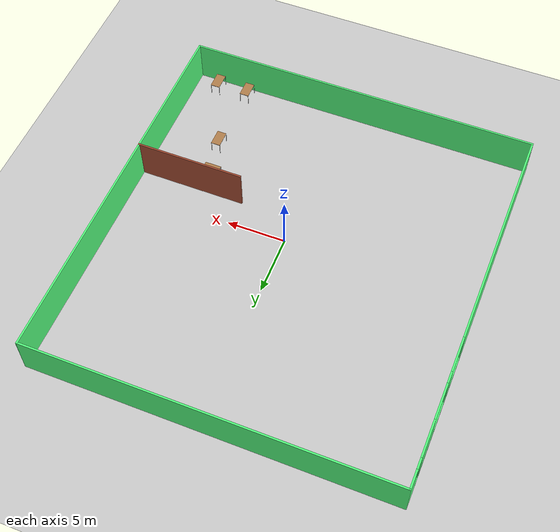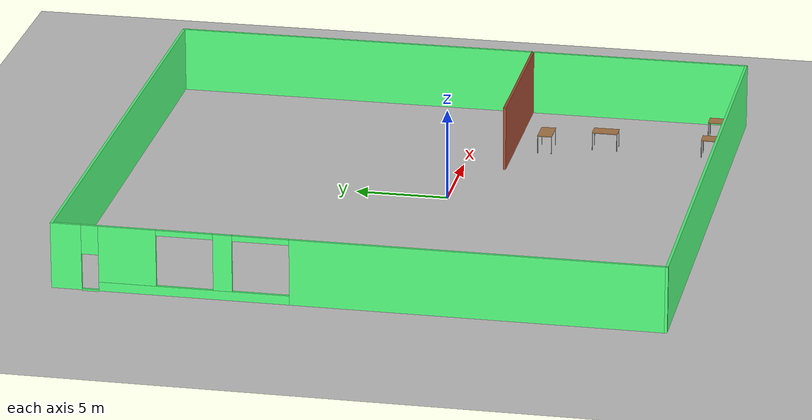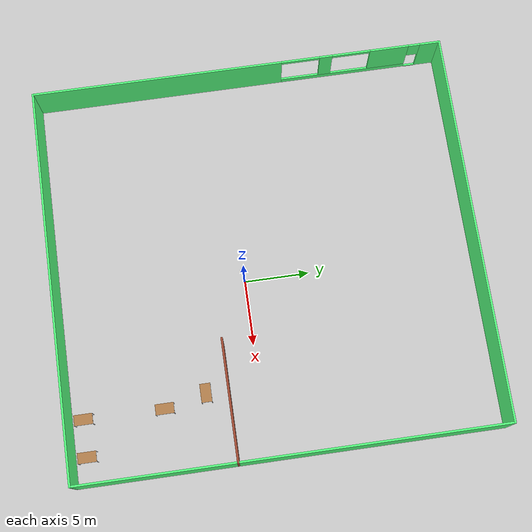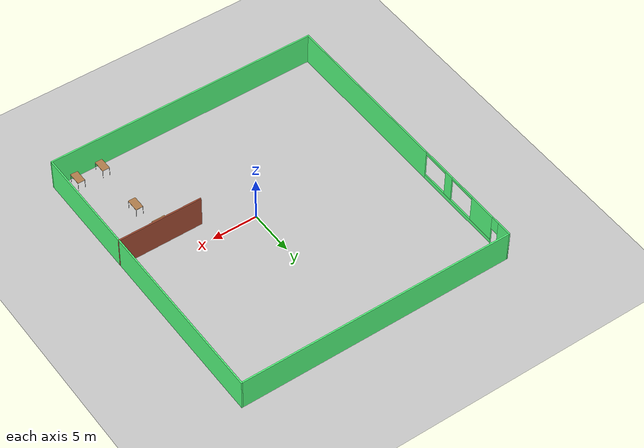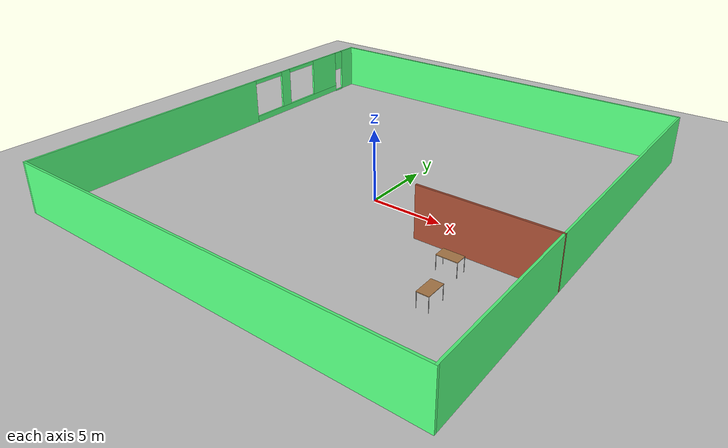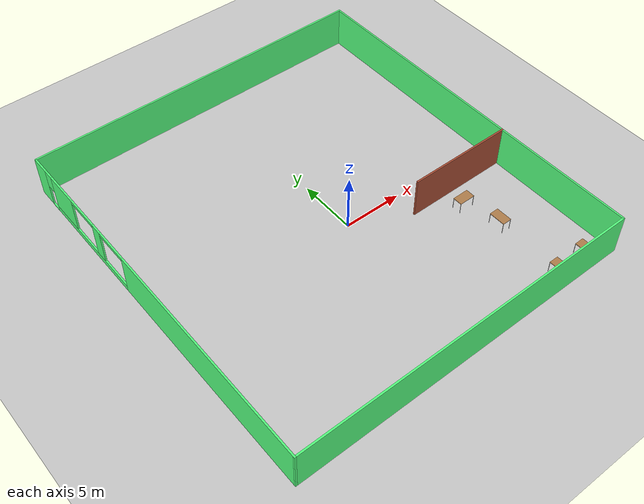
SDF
<sdf version="1.6">
 <world name="default">
  <plugin name="hello" filename="libhello.so"/>
  <light name="sun" type="directional">
   <pose>0 0 10 0 -0 0</pose>
   <diffuse>0.8 0.8 0.8 1</diffuse>
   <specular>0.1 0.1 0.1 1</specular>
   <attenuation>
    <range>1000</range>
    <constant>0.9</constant>
    <linear>0.01</linear>
    <quadratic>0.001</quadratic>
   </attenuation>
   <direction>-0.5 0.5 -1</direction>
  </light>
  <model name="ground_plane">
   <static>1</static>
   <link name="link">
    <collision name="collision">
     <geometry><plane><normal>0 0 1</normal><size>100 100</size></plane></geometry>
     <surface><friction><ode><mu>100</mu><mu2>50</mu2></ode></friction></surface>
    </collision>
    <visual name="visual">
     <cast_shadows>0</cast_shadows>
     <geometry><plane><normal>0 0 1</normal><size>100 100</size></plane></geometry>
     <material>
      <script><uri>file://media/materials/scripts/gazebo.material</uri><name>Gazebo/Grey</name></script>
     </material>
    </visual>
   </link>
  </model>
  <gravity>0 0 -9.8</gravity>
  <magnetic_field>6e-06 2.3e-05 -4.2e-05</magnetic_field>
  <atmosphere type="adiabatic"/>
  <physics name="default_physics" default="0" type="ode">
   <max_step_size>0.001</max_step_size>
   <real_time_factor>1</real_time_factor>
   <real_time_update_rate>1000</real_time_update_rate>
  </physics>
  <scene><ambient>0.4 0.4 0.4 1</ambient><background>0.7 0.7 0.7 1</background><shadows>1</shadows></scene>
  <spherical_coordinates>
   <surface_model>EARTH_WGS84</surface_model>
   <latitude_deg>0</latitude_deg>
   <longitude_deg>0</longitude_deg>
   <elevation>0</elevation>
   <heading_deg>0</heading_deg>
  </spherical_coordinates>
  <model name="table_0_clone">
   <static>0</static>
   <link name="link">
    <collision name="surface">
     <pose>0 0 1 0 -0 0</pose>
     <geometry><box><size>1.5 0.8 0.03</size></box></geometry>
     <surface><friction><ode><mu>0.6</mu><mu2>0.6</mu2></ode></friction></surface>
    </collision>
    <visual name="visual1">
     <pose>0 0 1 0 -0 0</pose>
     <geometry><box><size>1.4 0.8 0.04</size></box></geometry>
     <material>
      <script><uri>file://media/materials/scripts/gazebo.material</uri><name>Gazebo/Wood</name></script>
     </material>
    </visual>
    <collision name="front_left_leg">
     <pose>0.68 0.38 0.5 0 -0 0</pose>
     <geometry><cylinder><radius>0.02</radius><length>1</length></cylinder></geometry>
    </collision>
    <visual name="front_left_leg">
     <pose>0.68 0.38 0.5 0 -0 0</pose>
     <geometry><cylinder><radius>0.02</radius><length>1</length></cylinder></geometry>
     <material>
      <script><uri>file://media/materials/scripts/gazebo.material</uri><name>Gazebo/Grey</name></script>
     </material>
    </visual>
    <collision name="front_right_leg">
     <pose>0.68 -0.38 0.5 0 -0 0</pose>
     <geometry><cylinder><radius>0.02</radius><length>1</length></cylinder></geometry>
    </collision>
    <visual name="front_right_leg">
     <pose>0.68 -0.38 0.5 0 -0 0</pose>
     <geometry><cylinder><radius>0.02</radius><length>1</length></cylinder></geometry>
     <material>
      <script><uri>file://media/materials/scripts/gazebo.material</uri><name>Gazebo/Grey</name></script>
     </material>
    </visual>
    <collision name="back_right_leg">
     <pose>-0.68 -0.38 0.5 0 -0 0</pose>
     <geometry><cylinder><radius>0.02</radius><length>1</length></cylinder></geometry>
    </collision>
    <visual name="back_right_leg">
     <pose>-0.68 -0.38 0.5 0 -0 0</pose>
     <geometry><cylinder><radius>0.02</radius><length>1</length></cylinder></geometry>
     <material>
      <script><uri>file://media/materials/scripts/gazebo.material</uri><name>Gazebo/Grey</name></script>
     </material>
    </visual>
    <collision name="back_left_leg">
     <pose>-0.68 0.38 0.5 0 -0 0</pose>
     <geometry><cylinder><radius>0.02</radius><length>1</length></cylinder></geometry>
    </collision>
    <visual name="back_left_leg">
     <pose>-0.68 0.38 0.5 0 -0 0</pose>
     <geometry><cylinder><radius>0.02</radius><length>1</length></cylinder></geometry>
     <material>
      <script><uri>file://media/materials/scripts/gazebo.material</uri><name>Gazebo/Grey</name></script>
     </material>
    </visual>
    <inertial>
     <inertia><ixx>1</ixx><ixy>0</ixy><ixz>0</ixz><iyy>1</iyy><iyz>0</iyz><izz>1</izz></inertia>
     <mass>1</mass>
    </inertial>
   </link>
   <pose>8.92902 -13.2599 -1e-06 -0 -1e-06 1.57</pose>
  </model>
  <model name="table_0_clone_0">
   <static>0</static>
   <link name="link">
    <collision name="surface">
     <pose>0 0 1 0 -0 0</pose>
     <geometry><box><size>1.5 0.8 0.03</size></box></geometry>
     <surface><friction><ode><mu>0.6</mu><mu2>0.6</mu2></ode></friction></surface>
    </collision>
    <visual name="visual1">
     <pose>0 0 1 0 -0 0</pose>
     <geometry><box><size>1.4 0.8 0.04</size></box></geometry>
     <material>
      <script><uri>file://media/materials/scripts/gazebo.material</uri><name>Gazebo/Wood</name></script>
     </material>
    </visual>
    <collision name="front_left_leg">
     <pose>0.68 0.38 0.5 0 -0 0</pose>
     <geometry><cylinder><radius>0.02</radius><length>1</length></cylinder></geometry>
    </collision>
    <visual name="front_left_leg">
     <pose>0.68 0.38 0.5 0 -0 0</pose>
     <geometry><cylinder><radius>0.02</radius><length>1</length></cylinder></geometry>
     <material>
      <script><uri>file://media/materials/scripts/gazebo.material</uri><name>Gazebo/Grey</name></script>
     </material>
    </visual>
    <collision name="front_right_leg">
     <pose>0.68 -0.38 0.5 0 -0 0</pose>
     <geometry><cylinder><radius>0.02</radius><length>1</length></cylinder></geometry>
    </collision>
    <visual name="front_right_leg">
     <pose>0.68 -0.38 0.5 0 -0 0</pose>
     <geometry><cylinder><radius>0.02</radius><length>1</length></cylinder></geometry>
     <material>
      <script><uri>file://media/materials/scripts/gazebo.material</uri><name>Gazebo/Grey</name></script>
     </material>
    </visual>
    <collision name="back_right_leg">
     <pose>-0.68 -0.38 0.5 0 -0 0</pose>
     <geometry><cylinder><radius>0.02</radius><length>1</length></cylinder></geometry>
    </collision>
    <visual name="back_right_leg">
     <pose>-0.68 -0.38 0.5 0 -0 0</pose>
     <geometry><cylinder><radius>0.02</radius><length>1</length></cylinder></geometry>
     <material>
      <script><uri>file://media/materials/scripts/gazebo.material</uri><name>Gazebo/Grey</name></script>
     </material>
    </visual>
    <collision name="back_left_leg">
     <pose>-0.68 0.38 0.5 0 -0 0</pose>
     <geometry><cylinder><radius>0.02</radius><length>1</length></cylinder></geometry>
    </collision>
    <visual name="back_left_leg">
     <pose>-0.68 0.38 0.5 0 -0 0</pose>
     <geometry><cylinder><radius>0.02</radius><length>1</length></cylinder></geometry>
     <material>
      <script><uri>file://media/materials/scripts/gazebo.material</uri><name>Gazebo/Grey</name></script>
     </material>
    </visual>
    <inertial>
     <inertia><ixx>1</ixx><ixy>0</ixy><ixz>0</ixz><iyy>1</iyy><iyz>0</iyz><izz>1</izz></inertia>
     <mass>1</mass>
    </inertial>
   </link>
   <pose>11.713 -13.2581 0 -1e-06 0 1.57</pose>
  </model>
  <model name="table_0_clone_0_clone_0_clone_0">
   <static>0</static>
   <link name="link">
    <collision name="surface">
     <pose>0 0 1 0 -0 0</pose>
     <geometry><box><size>1.5 0.8 0.03</size></box></geometry>
     <surface><friction><ode><mu>0.6</mu><mu2>0.6</mu2></ode></friction></surface>
    </collision>
    <visual name="visual1">
     <pose>0 0 1 0 -0 0</pose>
     <geometry><box><size>1.4 0.8 0.04</size></box></geometry>
     <material>
      <script><uri>file://media/materials/scripts/gazebo.material</uri><name>Gazebo/Wood</name></script>
     </material>
    </visual>
    <collision name="front_left_leg">
     <pose>0.68 0.38 0.5 0 -0 0</pose>
     <geometry><cylinder><radius>0.02</radius><length>1</length></cylinder></geometry>
    </collision>
    <visual name="front_left_leg">
     <pose>0.68 0.38 0.5 0 -0 0</pose>
     <geometry><cylinder><radius>0.02</radius><length>1</length></cylinder></geometry>
     <material>
      <script><uri>file://media/materials/scripts/gazebo.material</uri><name>Gazebo/Grey</name></script>
     </material>
    </visual>
    <collision name="front_right_leg">
     <pose>0.68 -0.38 0.5 0 -0 0</pose>
     <geometry><cylinder><radius>0.02</radius><length>1</length></cylinder></geometry>
    </collision>
    <visual name="front_right_leg">
     <pose>0.68 -0.38 0.5 0 -0 0</pose>
     <geometry><cylinder><radius>0.02</radius><length>1</length></cylinder></geometry>
     <material>
      <script><uri>file://media/materials/scripts/gazebo.material</uri><name>Gazebo/Grey</name></script>
     </material>
    </visual>
    <collision name="back_right_leg">
     <pose>-0.68 -0.38 0.5 0 -0 0</pose>
     <geometry><cylinder><radius>0.02</radius><length>1</length></cylinder></geometry>
    </collision>
    <visual name="back_right_leg">
     <pose>-0.68 -0.38 0.5 0 -0 0</pose>
     <geometry><cylinder><radius>0.02</radius><length>1</length></cylinder></geometry>
     <material>
      <script><uri>file://media/materials/scripts/gazebo.material</uri><name>Gazebo/Grey</name></script>
     </material>
    </visual>
    <collision name="back_left_leg">
     <pose>-0.68 0.38 0.5 0 -0 0</pose>
     <geometry><cylinder><radius>0.02</radius><length>1</length></cylinder></geometry>
    </collision>
    <visual name="back_left_leg">
     <pose>-0.68 0.38 0.5 0 -0 0</pose>
     <geometry><cylinder><radius>0.02</radius><length>1</length></cylinder></geometry>
     <material>
      <script><uri>file://media/materials/scripts/gazebo.material</uri><name>Gazebo/Grey</name></script>
     </material>
    </visual>
    <inertial>
     <inertia><ixx>1</ixx><ixy>0</ixy><ixz>0</ixz><iyy>1</iyy><iyz>0</iyz><izz>1</izz></inertia>
     <mass>1</mass>
    </inertial>
   </link>
   <pose>8.979 -7.20182 -1e-06 -0 -1e-06 1.57</pose>
  </model>
  <model name="table_1_clone_0">
   <static>0</static>
   <link name="link">
    <collision name="surface">
     <pose>0 0 1 0 -0 0</pose>
     <geometry><box><size>1.5 0.8 0.03</size></box></geometry>
     <surface><friction><ode><mu>0.6</mu><mu2>0.6</mu2></ode></friction></surface>
    </collision>
    <visual name="visual1">
     <pose>0 0 1 0 -0 0</pose>
     <geometry><box><size>1.4 0.8 0.04</size></box></geometry>
     <material>
      <script><uri>file://media/materials/scripts/gazebo.material</uri><name>Gazebo/Wood</name></script>
     </material>
    </visual>
    <collision name="front_left_leg">
     <pose>0.68 0.38 0.5 0 -0 0</pose>
     <geometry><cylinder><radius>0.02</radius><length>1</length></cylinder></geometry>
    </collision>
    <visual name="front_left_leg">
     <pose>0.68 0.38 0.5 0 -0 0</pose>
     <geometry><cylinder><radius>0.02</radius><length>1</length></cylinder></geometry>
     <material>
      <script><uri>file://media/materials/scripts/gazebo.material</uri><name>Gazebo/Grey</name></script>
     </material>
    </visual>
    <collision name="front_right_leg">
     <pose>0.68 -0.38 0.5 0 -0 0</pose>
     <geometry><cylinder><radius>0.02</radius><length>1</length></cylinder></geometry>
    </collision>
    <visual name="front_right_leg">
     <pose>0.68 -0.38 0.5 0 -0 0</pose>
     <geometry><cylinder><radius>0.02</radius><length>1</length></cylinder></geometry>
     <material>
      <script><uri>file://media/materials/scripts/gazebo.material</uri><name>Gazebo/Grey</name></script>
     </material>
    </visual>
    <collision name="back_right_leg">
     <pose>-0.68 -0.38 0.5 0 -0 0</pose>
     <geometry><cylinder><radius>0.02</radius><length>1</length></cylinder></geometry>
    </collision>
    <visual name="back_right_leg">
     <pose>-0.68 -0.38 0.5 0 -0 0</pose>
     <geometry><cylinder><radius>0.02</radius><length>1</length></cylinder></geometry>
     <material>
      <script><uri>file://media/materials/scripts/gazebo.material</uri><name>Gazebo/Grey</name></script>
     </material>
    </visual>
    <collision name="back_left_leg">
     <pose>-0.68 0.38 0.5 0 -0 0</pose>
     <geometry><cylinder><radius>0.02</radius><length>1</length></cylinder></geometry>
    </collision>
    <visual name="back_left_leg">
     <pose>-0.68 0.38 0.5 0 -0 0</pose>
     <geometry><cylinder><radius>0.02</radius><length>1</length></cylinder></geometry>
     <material>
      <script><uri>file://media/materials/scripts/gazebo.material</uri><name>Gazebo/Grey</name></script>
     </material>
    </visual>
    <inertial>
     <inertia><ixx>1</ixx><ixy>0</ixy><ixz>0</ixz><iyy>1</iyy><iyz>0</iyz><izz>1</izz></inertia>
     <mass>1</mass>
    </inertial>
   </link>
   <pose>8.23817 -4.02749 -9e-06 0 -1e-06 0</pose>
  </model>
  <model name="floorplan_new">
   <link name="Wall_0">
    <pose>0 16 0 0 -0 0</pose>
    <visual name="Wall_0_Visual">
     <pose>0 0 1.8 0 -0 0</pose>
     <geometry><box><size>30.15 0.15 3.6</size></box></geometry>
     <material>
      <script><uri>file://media/materials/scripts/gazebo.material</uri><name>Gazebo/Grey</name></script>
      <ambient>0.333333 1 0.498039 1</ambient>
      <shader type="pixel"/>
      <diffuse>0.7 0.7 0.7 1</diffuse>
      <specular>0.01 0.01 0.01 1</specular>
      <emissive>0 0 0 1</emissive>
     </material>
    </visual>
    <collision name="Wall_0_Collision">
     <pose>0 0 1.8 0 -0 0</pose>
     <geometry><box><size>30.15 0.15 3.6</size></box></geometry>
     <surface>
      <friction>
       <ode><mu>1</mu><mu2>1</mu2><fdir1>0 0 0</fdir1><slip1>0</slip1><slip2>0</slip2></ode>
       <torsional>
        <coefficient>1</coefficient>
        <patch_radius>0</patch_radius>
        <surface_radius>0</surface_radius>
        <use_patch_radius>1</use_patch_radius>
        <ode><slip>0</slip></ode>
       </torsional>
      </friction>
      <bounce><restitution_coefficient>0</restitution_coefficient><threshold>1e+06</threshold></bounce>
      <contact>
       <collide_without_contact>0</collide_without_contact>
       <collide_without_contact_bitmask>1</collide_without_contact_bitmask>
       <collide_bitmask>1</collide_bitmask>
       <ode>
        <soft_cfm>0</soft_cfm>
        <soft_erp>0.2</soft_erp>
        <kp>1e+13</kp>
        <kd>1</kd>
        <max_vel>0.01</max_vel>
        <min_depth>0</min_depth>
       </ode>
       <bullet>
        <split_impulse>1</split_impulse>
        <split_impulse_penetration_threshold>-0.01</split_impulse_penetration_threshold>
        <soft_cfm>0</soft_cfm>
        <soft_erp>0.2</soft_erp>
        <kp>1e+13</kp>
        <kd>1</kd>
       </bullet>
      </contact>
     </surface>
    </collision>
   </link>
   <link name="Wall_17">
    <pose>10.5 -4 0 0 -0 0</pose>
    <visual name="Wall_17_Visual">
     <pose>0 0 1.8 0 -0 0</pose>
     <geometry><box><size>9.15 0.15 3.6</size></box></geometry>
     <material>
      <script><uri>file://media/materials/scripts/gazebo.material</uri><name>Gazebo/Bricks</name></script>
      <ambient>0.333333 0.666667 1 1</ambient>
      <shader type="pixel"/>
      <diffuse>1 1 1 1</diffuse>
      <specular>0.2 0.2 0.2 1</specular>
      <emissive>0 0 0 1</emissive>
     </material>
    </visual>
    <collision name="Wall_17_Collision">
     <pose>0 0 1.8 0 -0 0</pose>
     <geometry><box><size>9.15 0.15 3.6</size></box></geometry>
     <surface>
      <friction>
       <ode><mu>1</mu><mu2>1</mu2><fdir1>0 0 0</fdir1><slip1>0</slip1><slip2>0</slip2></ode>
       <torsional>
        <coefficient>1</coefficient>
        <patch_radius>0</patch_radius>
        <surface_radius>0</surface_radius>
        <use_patch_radius>1</use_patch_radius>
        <ode><slip>0</slip></ode>
       </torsional>
      </friction>
      <bounce><restitution_coefficient>0</restitution_coefficient><threshold>1e+06</threshold></bounce>
      <contact>
       <collide_without_contact>0</collide_without_contact>
       <collide_without_contact_bitmask>1</collide_without_contact_bitmask>
       <collide_bitmask>1</collide_bitmask>
       <ode>
        <soft_cfm>0</soft_cfm>
        <soft_erp>0.2</soft_erp>
        <kp>1e+13</kp>
        <kd>1</kd>
        <max_vel>0.01</max_vel>
        <min_depth>0</min_depth>
       </ode>
       <bullet>
        <split_impulse>1</split_impulse>
        <split_impulse_penetration_threshold>-0.01</split_impulse_penetration_threshold>
        <soft_cfm>0</soft_cfm>
        <soft_erp>0.2</soft_erp>
        <kp>1e+13</kp>
        <kd>1</kd>
       </bullet>
      </contact>
     </surface>
    </collision>
   </link>
   <link name="Wall_5">
    <pose>15 1e-06 0 0 0 -1.5708</pose>
    <visual name="Wall_5_Visual">
     <pose>0 0 1.8 0 -0 0</pose>
     <geometry><box><size>32.15 0.15 3.6</size></box></geometry>
     <material>
      <script><uri>file://media/materials/scripts/gazebo.material</uri><name>Gazebo/Grey</name></script>
      <ambient>0.333333 1 0.498039 1</ambient>
      <shader type="pixel"/>
      <diffuse>0.7 0.7 0.7 1</diffuse>
      <specular>0.01 0.01 0.01 1</specular>
      <emissive>0 0 0 1</emissive>
     </material>
    </visual>
    <collision name="Wall_5_Collision">
     <pose>0 0 1.8 0 -0 0</pose>
     <geometry><box><size>32.15 0.15 3.6</size></box></geometry>
     <surface>
      <friction>
       <ode><mu>1</mu><mu2>1</mu2><fdir1>0 0 0</fdir1><slip1>0</slip1><slip2>0</slip2></ode>
       <torsional>
        <coefficient>1</coefficient>
        <patch_radius>0</patch_radius>
        <surface_radius>0</surface_radius>
        <use_patch_radius>1</use_patch_radius>
        <ode><slip>0</slip></ode>
       </torsional>
      </friction>
      <bounce><restitution_coefficient>0</restitution_coefficient><threshold>1e+06</threshold></bounce>
      <contact>
       <collide_without_contact>0</collide_without_contact>
       <collide_without_contact_bitmask>1</collide_without_contact_bitmask>
       <collide_bitmask>1</collide_bitmask>
       <ode>
        <soft_cfm>0</soft_cfm>
        <soft_erp>0.2</soft_erp>
        <kp>1e+13</kp>
        <kd>1</kd>
        <max_vel>0.01</max_vel>
        <min_depth>0</min_depth>
       </ode>
       <bullet>
        <split_impulse>1</split_impulse>
        <split_impulse_penetration_threshold>-0.01</split_impulse_penetration_threshold>
        <soft_cfm>0</soft_cfm>
        <soft_erp>0.2</soft_erp>
        <kp>1e+13</kp>
        <kd>1</kd>
       </bullet>
      </contact>
     </surface>
    </collision>
   </link>
   <link name="Wall_6">
    <pose>0 -16 0 0 -0 3.14159</pose>
    <visual name="Wall_6_Visual">
     <pose>0 0 1.8 0 -0 0</pose>
     <geometry><box><size>30.15 0.15 3.6</size></box></geometry>
     <material>
      <script><uri>file://media/materials/scripts/gazebo.material</uri><name>Gazebo/Grey</name></script>
      <ambient>0.333333 1 0.498039 1</ambient>
      <shader type="pixel"/>
      <diffuse>0.7 0.7 0.7 1</diffuse>
      <specular>0.01 0.01 0.01 1</specular>
      <emissive>0 0 0 1</emissive>
     </material>
    </visual>
    <collision name="Wall_6_Collision">
     <pose>0 0 1.8 0 -0 0</pose>
     <geometry><box><size>30.15 0.15 3.6</size></box></geometry>
     <surface>
      <friction>
       <ode><mu>1</mu><mu2>1</mu2><fdir1>0 0 0</fdir1><slip1>0</slip1><slip2>0</slip2></ode>
       <torsional>
        <coefficient>1</coefficient>
        <patch_radius>0</patch_radius>
        <surface_radius>0</surface_radius>
        <use_patch_radius>1</use_patch_radius>
        <ode><slip>0</slip></ode>
       </torsional>
      </friction>
      <bounce><restitution_coefficient>0</restitution_coefficient><threshold>1e+06</threshold></bounce>
      <contact>
       <collide_without_contact>0</collide_without_contact>
       <collide_without_contact_bitmask>1</collide_without_contact_bitmask>
       <collide_bitmask>1</collide_bitmask>
       <ode>
        <soft_cfm>0</soft_cfm>
        <soft_erp>0.2</soft_erp>
        <kp>1e+13</kp>
        <kd>1</kd>
        <max_vel>0.01</max_vel>
        <min_depth>0</min_depth>
       </ode>
       <bullet>
        <split_impulse>1</split_impulse>
        <split_impulse_penetration_threshold>-0.01</split_impulse_penetration_threshold>
        <soft_cfm>0</soft_cfm>
        <soft_erp>0.2</soft_erp>
        <kp>1e+13</kp>
        <kd>1</kd>
       </bullet>
      </contact>
     </surface>
    </collision>
   </link>
   <link name="Wall_7">
    <pose>-15 1e-06 0 0 -0 1.5708</pose>
    <visual name="Wall_7_Visual_7">
     <pose>5 0 3.45 0 -0 0</pose>
     <geometry><box><size>3 0.15 0.3</size></box></geometry>
     <material>
      <script><uri>file://media/materials/scripts/gazebo.material</uri><name>Gazebo/Grey</name></script>
      <ambient>0.333333 1 0.498039 1</ambient>
      <shader type="pixel"/>
      <diffuse>0.7 0.7 0.7 1</diffuse>
      <specular>0.01 0.01 0.01 1</specular>
      <emissive>0 0 0 1</emissive>
     </material>
    </visual>
    <visual name="Wall_7_Visual_2">
     <pose>8.525 0 0.25 0 -0 0</pose>
     <geometry><box><size>10.05 0.15 0.5</size></box></geometry>
     <material>
      <script><uri>file://media/materials/scripts/gazebo.material</uri><name>Gazebo/Grey</name></script>
      <ambient>0.333333 1 0.498039 1</ambient>
      <shader type="pixel"/>
      <diffuse>0.7 0.7 0.7 1</diffuse>
      <specular>0.01 0.01 0.01 1</specular>
      <emissive>0 0 0 1</emissive>
     </material>
    </visual>
    <visual name="Wall_7_Visual_1">
     <pose>15.2625 0 1.8 0 -0 0</pose>
     <geometry><box><size>1.625 0.15 3.6</size></box></geometry>
     <material>
      <script><uri>file://media/materials/scripts/gazebo.material</uri><name>Gazebo/Grey</name></script>
      <ambient>0.333333 1 0.498039 1</ambient>
      <shader type="pixel"/>
      <diffuse>0.7 0.7 0.7 1</diffuse>
      <specular>0.01 0.01 0.01 1</specular>
      <emissive>0 0 0 1</emissive>
     </material>
    </visual>
    <visual name="Wall_7_Visual_3">
     <pose>14 0 0 0 -0 0</pose>
     <geometry><box><size>0.9 0.15 0.1</size></box></geometry>
     <material>
      <script><uri>file://media/materials/scripts/gazebo.material</uri><name>Gazebo/Grey</name></script>
      <ambient>0.333333 1 0.498039 1</ambient>
      <shader type="pixel"/>
      <diffuse>0.7 0.7 0.7 1</diffuse>
      <specular>0.01 0.01 0.01 1</specular>
      <emissive>0 0 0 1</emissive>
     </material>
    </visual>
    <visual name="Wall_7_Visual_0">
     <pose>-6.2875 0 1.8 0 -0 0</pose>
     <geometry><box><size>19.575 0.15 3.6</size></box></geometry>
     <material>
      <script><uri>file://media/materials/scripts/gazebo.material</uri><name>Gazebo/Grey</name></script>
      <ambient>0.333333 1 0.498039 1</ambient>
      <shader type="pixel"/>
      <diffuse>0.7 0.7 0.7 1</diffuse>
      <specular>0.01 0.01 0.01 1</specular>
      <emissive>0 0 0 1</emissive>
     </material>
    </visual>
    <visual name="Wall_7_Visual_5">
     <pose>12.025 0 2.05 0 -0 0</pose>
     <geometry><box><size>3.05 0.15 3.1</size></box></geometry>
     <material>
      <script><uri>file://media/materials/scripts/gazebo.material</uri><name>Gazebo/Grey</name></script>
      <ambient>0.333333 1 0.498039 1</ambient>
      <shader type="pixel"/>
      <diffuse>0.7 0.7 0.7 1</diffuse>
      <specular>0.01 0.01 0.01 1</specular>
      <emissive>0 0 0 1</emissive>
     </material>
    </visual>
    <visual name="Wall_7_Visual_6">
     <pose>14 0 2.8 0 -0 0</pose>
     <geometry><box><size>0.9 0.15 1.6</size></box></geometry>
     <material>
      <script><uri>file://media/materials/scripts/gazebo.material</uri><name>Gazebo/Grey</name></script>
      <ambient>0.333333 1 0.498039 1</ambient>
      <shader type="pixel"/>
      <diffuse>0.7 0.7 0.7 1</diffuse>
      <specular>0.01 0.01 0.01 1</specular>
      <emissive>0 0 0 1</emissive>
     </material>
    </visual>
    <visual name="Wall_7_Visual_8">
     <pose>9 0 3.45 0 -0 0</pose>
     <geometry><box><size>3 0.15 0.3</size></box></geometry>
     <material>
      <script><uri>file://media/materials/scripts/gazebo.material</uri><name>Gazebo/Grey</name></script>
      <ambient>0.333333 1 0.498039 1</ambient>
      <shader type="pixel"/>
      <diffuse>0.7 0.7 0.7 1</diffuse>
      <specular>0.01 0.01 0.01 1</specular>
      <emissive>0 0 0 1</emissive>
     </material>
    </visual>
    <visual name="Wall_7_Visual_4">
     <pose>7 0 2.05 0 -0 0</pose>
     <geometry><box><size>1 0.15 3.1</size></box></geometry>
     <material>
      <script><uri>file://media/materials/scripts/gazebo.material</uri><name>Gazebo/Grey</name></script>
      <ambient>0.333333 1 0.498039 1</ambient>
      <shader type="pixel"/>
      <diffuse>0.7 0.7 0.7 1</diffuse>
      <specular>0.01 0.01 0.01 1</specular>
      <emissive>0 0 0 1</emissive>
     </material>
    </visual>
    <collision name="Wall_7_Collision_3">
     <pose>14 0 0 0 -0 0</pose>
     <geometry><box><size>0.9 0.15 0.1</size></box></geometry>
     <surface>
      <friction>
       <ode><mu>1</mu><mu2>1</mu2><fdir1>0 0 0</fdir1><slip1>0</slip1><slip2>0</slip2></ode>
       <torsional>
        <coefficient>1</coefficient>
        <patch_radius>0</patch_radius>
        <surface_radius>0</surface_radius>
        <use_patch_radius>1</use_patch_radius>
        <ode><slip>0</slip></ode>
       </torsional>
      </friction>
      <bounce><restitution_coefficient>0</restitution_coefficient><threshold>1e+06</threshold></bounce>
      <contact>
       <collide_without_contact>0</collide_without_contact>
       <collide_without_contact_bitmask>1</collide_without_contact_bitmask>
       <collide_bitmask>1</collide_bitmask>
       <ode>
        <soft_cfm>0</soft_cfm>
        <soft_erp>0.2</soft_erp>
        <kp>1e+13</kp>
        <kd>1</kd>
        <max_vel>0.01</max_vel>
        <min_depth>0</min_depth>
       </ode>
       <bullet>
        <split_impulse>1</split_impulse>
        <split_impulse_penetration_threshold>-0.01</split_impulse_penetration_threshold>
        <soft_cfm>0</soft_cfm>
        <soft_erp>0.2</soft_erp>
        <kp>1e+13</kp>
        <kd>1</kd>
       </bullet>
      </contact>
     </surface>
    </collision>
    <collision name="Wall_7_Collision_0">
     <pose>-6.2875 0 1.8 0 -0 0</pose>
     <geometry><box><size>19.575 0.15 3.6</size></box></geometry>
     <surface>
      <friction>
       <ode><mu>1</mu><mu2>1</mu2><fdir1>0 0 0</fdir1><slip1>0</slip1><slip2>0</slip2></ode>
       <torsional>
        <coefficient>1</coefficient>
        <patch_radius>0</patch_radius>
        <surface_radius>0</surface_radius>
        <use_patch_radius>1</use_patch_radius>
        <ode><slip>0</slip></ode>
       </torsional>
      </friction>
      <bounce><restitution_coefficient>0</restitution_coefficient><threshold>1e+06</threshold></bounce>
      <contact>
       <collide_without_contact>0</collide_without_contact>
       <collide_without_contact_bitmask>1</collide_without_contact_bitmask>
       <collide_bitmask>1</collide_bitmask>
       <ode>
        <soft_cfm>0</soft_cfm>
        <soft_erp>0.2</soft_erp>
        <kp>1e+13</kp>
        <kd>1</kd>
        <max_vel>0.01</max_vel>
        <min_depth>0</min_depth>
       </ode>
       <bullet>
        <split_impulse>1</split_impulse>
        <split_impulse_penetration_threshold>-0.01</split_impulse_penetration_threshold>
        <soft_cfm>0</soft_cfm>
        <soft_erp>0.2</soft_erp>
        <kp>1e+13</kp>
        <kd>1</kd>
       </bullet>
      </contact>
     </surface>
    </collision>
    <collision name="Wall_7_Collision_1">
     <pose>15.2625 0 1.8 0 -0 0</pose>
     <geometry><box><size>1.625 0.15 3.6</size></box></geometry>
     <surface>
      <friction>
       <ode><mu>1</mu><mu2>1</mu2><fdir1>0 0 0</fdir1><slip1>0</slip1><slip2>0</slip2></ode>
       <torsional>
        <coefficient>1</coefficient>
        <patch_radius>0</patch_radius>
        <surface_radius>0</surface_radius>
        <use_patch_radius>1</use_patch_radius>
        <ode><slip>0</slip></ode>
       </torsional>
      </friction>
      <bounce><restitution_coefficient>0</restitution_coefficient><threshold>1e+06</threshold></bounce>
      <contact>
       <collide_without_contact>0</collide_without_contact>
       <collide_without_contact_bitmask>1</collide_without_contact_bitmask>
       <collide_bitmask>1</collide_bitmask>
       <ode>
        <soft_cfm>0</soft_cfm>
        <soft_erp>0.2</soft_erp>
        <kp>1e+13</kp>
        <kd>1</kd>
        <max_vel>0.01</max_vel>
        <min_depth>0</min_depth>
       </ode>
       <bullet>
        <split_impulse>1</split_impulse>
        <split_impulse_penetration_threshold>-0.01</split_impulse_penetration_threshold>
        <soft_cfm>0</soft_cfm>
        <soft_erp>0.2</soft_erp>
        <kp>1e+13</kp>
        <kd>1</kd>
       </bullet>
      </contact>
     </surface>
    </collision>
    <collision name="Wall_7_Collision_6">
     <pose>14 0 2.8 0 -0 0</pose>
     <geometry><box><size>0.9 0.15 1.6</size></box></geometry>
     <surface>
      <friction>
       <ode><mu>1</mu><mu2>1</mu2><fdir1>0 0 0</fdir1><slip1>0</slip1><slip2>0</slip2></ode>
       <torsional>
        <coefficient>1</coefficient>
        <patch_radius>0</patch_radius>
        <surface_radius>0</surface_radius>
        <use_patch_radius>1</use_patch_radius>
        <ode><slip>0</slip></ode>
       </torsional>
      </friction>
      <bounce><restitution_coefficient>0</restitution_coefficient><threshold>1e+06</threshold></bounce>
      <contact>
       <collide_without_contact>0</collide_without_contact>
       <collide_without_contact_bitmask>1</collide_without_contact_bitmask>
       <collide_bitmask>1</collide_bitmask>
       <ode>
        <soft_cfm>0</soft_cfm>
        <soft_erp>0.2</soft_erp>
        <kp>1e+13</kp>
        <kd>1</kd>
        <max_vel>0.01</max_vel>
        <min_depth>0</min_depth>
       </ode>
       <bullet>
        <split_impulse>1</split_impulse>
        <split_impulse_penetration_threshold>-0.01</split_impulse_penetration_threshold>
        <soft_cfm>0</soft_cfm>
        <soft_erp>0.2</soft_erp>
        <kp>1e+13</kp>
        <kd>1</kd>
       </bullet>
      </contact>
     </surface>
    </collision>
    <collision name="Wall_7_Collision_8">
     <pose>9 0 3.45 0 -0 0</pose>
     <geometry><box><size>3 0.15 0.3</size></box></geometry>
     <surface>
      <friction>
       <ode><mu>1</mu><mu2>1</mu2><fdir1>0 0 0</fdir1><slip1>0</slip1><slip2>0</slip2></ode>
       <torsional>
        <coefficient>1</coefficient>
        <patch_radius>0</patch_radius>
        <surface_radius>0</surface_radius>
        <use_patch_radius>1</use_patch_radius>
        <ode><slip>0</slip></ode>
       </torsional>
      </friction>
      <bounce><restitution_coefficient>0</restitution_coefficient><threshold>1e+06</threshold></bounce>
      <contact>
       <collide_without_contact>0</collide_without_contact>
       <collide_without_contact_bitmask>1</collide_without_contact_bitmask>
       <collide_bitmask>1</collide_bitmask>
       <ode>
        <soft_cfm>0</soft_cfm>
        <soft_erp>0.2</soft_erp>
        <kp>1e+13</kp>
        <kd>1</kd>
        <max_vel>0.01</max_vel>
        <min_depth>0</min_depth>
       </ode>
       <bullet>
        <split_impulse>1</split_impulse>
        <split_impulse_penetration_threshold>-0.01</split_impulse_penetration_threshold>
        <soft_cfm>0</soft_cfm>
        <soft_erp>0.2</soft_erp>
        <kp>1e+13</kp>
        <kd>1</kd>
       </bullet>
      </contact>
     </surface>
    </collision>
    <collision name="Wall_7_Collision_4">
     <pose>7 0 2.05 0 -0 0</pose>
     <geometry><box><size>1 0.15 3.1</size></box></geometry>
     <surface>
      <friction>
       <ode><mu>1</mu><mu2>1</mu2><fdir1>0 0 0</fdir1><slip1>0</slip1><slip2>0</slip2></ode>
       <torsional>
        <coefficient>1</coefficient>
        <patch_radius>0</patch_radius>
        <surface_radius>0</surface_radius>
        <use_patch_radius>1</use_patch_radius>
        <ode><slip>0</slip></ode>
       </torsional>
      </friction>
      <bounce><restitution_coefficient>0</restitution_coefficient><threshold>1e+06</threshold></bounce>
      <contact>
       <collide_without_contact>0</collide_without_contact>
       <collide_without_contact_bitmask>1</collide_without_contact_bitmask>
       <collide_bitmask>1</collide_bitmask>
       <ode>
        <soft_cfm>0</soft_cfm>
        <soft_erp>0.2</soft_erp>
        <kp>1e+13</kp>
        <kd>1</kd>
        <max_vel>0.01</max_vel>
        <min_depth>0</min_depth>
       </ode>
       <bullet>
        <split_impulse>1</split_impulse>
        <split_impulse_penetration_threshold>-0.01</split_impulse_penetration_threshold>
        <soft_cfm>0</soft_cfm>
        <soft_erp>0.2</soft_erp>
        <kp>1e+13</kp>
        <kd>1</kd>
       </bullet>
      </contact>
     </surface>
    </collision>
    <collision name="Wall_7_Collision_7">
     <pose>5 0 3.45 0 -0 0</pose>
     <geometry><box><size>3 0.15 0.3</size></box></geometry>
     <surface>
      <friction>
       <ode><mu>1</mu><mu2>1</mu2><fdir1>0 0 0</fdir1><slip1>0</slip1><slip2>0</slip2></ode>
       <torsional>
        <coefficient>1</coefficient>
        <patch_radius>0</patch_radius>
        <surface_radius>0</surface_radius>
        <use_patch_radius>1</use_patch_radius>
        <ode><slip>0</slip></ode>
       </torsional>
      </friction>
      <bounce><restitution_coefficient>0</restitution_coefficient><threshold>1e+06</threshold></bounce>
      <contact>
       <collide_without_contact>0</collide_without_contact>
       <collide_without_contact_bitmask>1</collide_without_contact_bitmask>
       <collide_bitmask>1</collide_bitmask>
       <ode>
        <soft_cfm>0</soft_cfm>
        <soft_erp>0.2</soft_erp>
        <kp>1e+13</kp>
        <kd>1</kd>
        <max_vel>0.01</max_vel>
        <min_depth>0</min_depth>
       </ode>
       <bullet>
        <split_impulse>1</split_impulse>
        <split_impulse_penetration_threshold>-0.01</split_impulse_penetration_threshold>
        <soft_cfm>0</soft_cfm>
        <soft_erp>0.2</soft_erp>
        <kp>1e+13</kp>
        <kd>1</kd>
       </bullet>
      </contact>
     </surface>
    </collision>
    <collision name="Wall_7_Collision_2">
     <pose>8.525 0 0.25 0 -0 0</pose>
     <geometry><box><size>10.05 0.15 0.5</size></box></geometry>
     <surface>
      <friction>
       <ode><mu>1</mu><mu2>1</mu2><fdir1>0 0 0</fdir1><slip1>0</slip1><slip2>0</slip2></ode>
       <torsional>
        <coefficient>1</coefficient>
        <patch_radius>0</patch_radius>
        <surface_radius>0</surface_radius>
        <use_patch_radius>1</use_patch_radius>
        <ode><slip>0</slip></ode>
       </torsional>
      </friction>
      <bounce><restitution_coefficient>0</restitution_coefficient><threshold>1e+06</threshold></bounce>
      <contact>
       <collide_without_contact>0</collide_without_contact>
       <collide_without_contact_bitmask>1</collide_without_contact_bitmask>
       <collide_bitmask>1</collide_bitmask>
       <ode>
        <soft_cfm>0</soft_cfm>
        <soft_erp>0.2</soft_erp>
        <kp>1e+13</kp>
        <kd>1</kd>
        <max_vel>0.01</max_vel>
        <min_depth>0</min_depth>
       </ode>
       <bullet>
        <split_impulse>1</split_impulse>
        <split_impulse_penetration_threshold>-0.01</split_impulse_penetration_threshold>
        <soft_cfm>0</soft_cfm>
        <soft_erp>0.2</soft_erp>
        <kp>1e+13</kp>
        <kd>1</kd>
       </bullet>
      </contact>
     </surface>
    </collision>
    <collision name="Wall_7_Collision_5">
     <pose>12.025 0 2.05 0 -0 0</pose>
     <geometry><box><size>3.05 0.15 3.1</size></box></geometry>
     <surface>
      <friction>
       <ode><mu>1</mu><mu2>1</mu2><fdir1>0 0 0</fdir1><slip1>0</slip1><slip2>0</slip2></ode>
       <torsional>
        <coefficient>1</coefficient>
        <patch_radius>0</patch_radius>
        <surface_radius>0</surface_radius>
        <use_patch_radius>1</use_patch_radius>
        <ode><slip>0</slip></ode>
       </torsional>
      </friction>
      <bounce><restitution_coefficient>0</restitution_coefficient><threshold>1e+06</threshold></bounce>
      <contact>
       <collide_without_contact>0</collide_without_contact>
       <collide_without_contact_bitmask>1</collide_without_contact_bitmask>
       <collide_bitmask>1</collide_bitmask>
       <ode>
        <soft_cfm>0</soft_cfm>
        <soft_erp>0.2</soft_erp>
        <kp>1e+13</kp>
        <kd>1</kd>
        <max_vel>0.01</max_vel>
        <min_depth>0</min_depth>
       </ode>
       <bullet>
        <split_impulse>1</split_impulse>
        <split_impulse_penetration_threshold>-0.01</split_impulse_penetration_threshold>
        <soft_cfm>0</soft_cfm>
        <soft_erp>0.2</soft_erp>
        <kp>1e+13</kp>
        <kd>1</kd>
       </bullet>
      </contact>
     </surface>
    </collision>
   </link>
   <static>1</static>
   <pose>-1.20922 1.7115 0 0 -0 0</pose>
  </model>
 </world>
</sdf>
